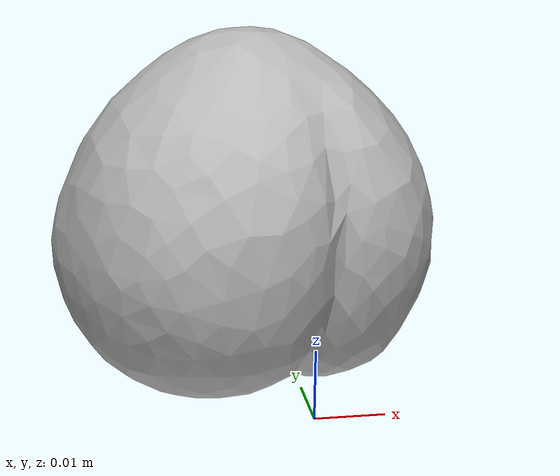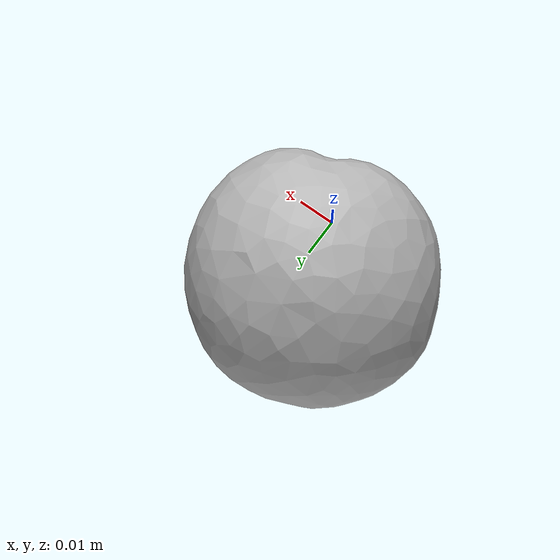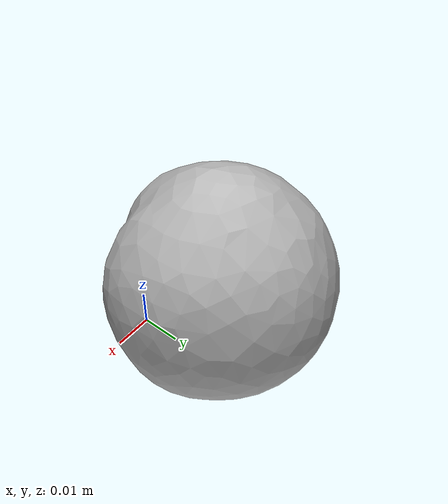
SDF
<?xml version="1.0" ?>
<sdf version="1.4">
  <model name='ycb_018_plum'>
    <link name='body'>
      <inertial>
        <mass>0.025</mass>
        <pose>-0.00774261128048 0.0194922316554 0.0237203375324 0 0 0</pose>
        <inertia>
          <ixx>7.29015772747e-06</ixx>
          <ixy>-8.35146906738e-08</ixy>
          <ixz>-6.09416095178e-08</ixz>
          <iyy>7.71168505326e-06</iyy>
          <iyz>1.30653911736e-07</iyz>
          <izz>7.75759371421e-06</izz>
        </inertia>
      </inertial>
      <visual name='ycb_018_plum_visual'>
        <pose>0 0 0 0 0 0</pose>
        <geometry>
          <mesh>
            <uri>model://ycb_018_plum/meshes/textured.dae</uri>
          </mesh>
        </geometry>
      </visual>
      <collision name='ycb_018_plum_collision'>
        <pose>0 0 0 0 0 0</pose>
        <geometry>
          <mesh>
            <uri>model://ycb_018_plum/meshes/nontextured.stl</uri>
          </mesh>
        </geometry>
        <max_contacts>10</max_contacts>
        <surface>
          <contact>
            <ode>
              <kp>1e15</kp>
              <kd>1e13</kd>
            </ode>
          </contact>
        </surface>
      </collision>
    </link>
  </model>
</sdf>
